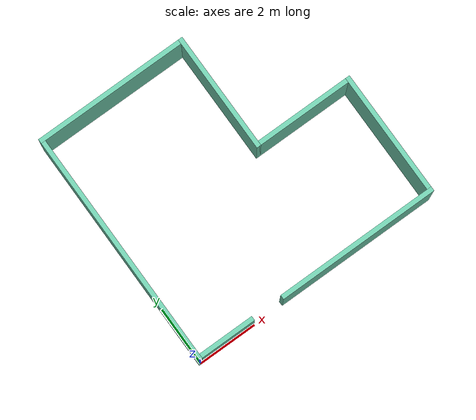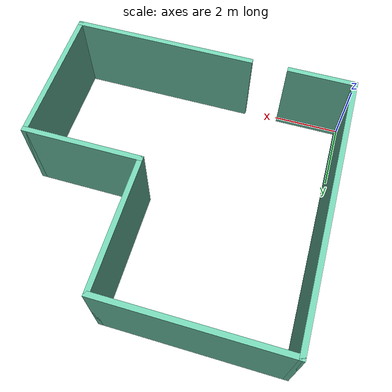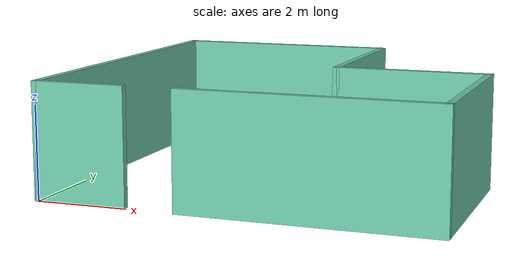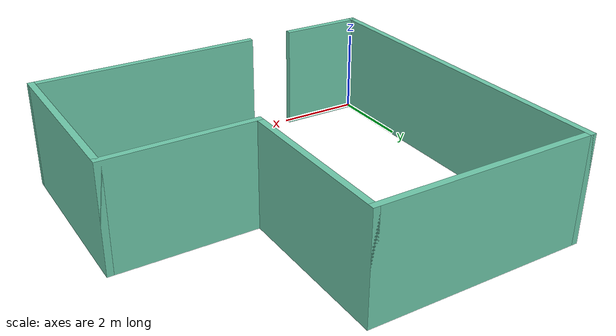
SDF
<?xml version='1.0'?>
<sdf version='1.7'>
  <model name='room'>
    <pose>4.225 4.025 0 0 -0 0</pose>
    <link name='Wall_0'>
      <collision name='Wall_0_Collision'>
        <geometry>
          <box>
            <size>8.1 0.15 2.5</size>
          </box>
        </geometry>
        <pose>0 0 1.25 0 -0 0</pose>
      </collision>
      <visual name='Wall_0_Visual'>
        <pose>0 0 1.25 0 -0 0</pose>
        <geometry>
          <box>
            <size>8.1 0.15 2.5</size>
          </box>
        </geometry>
        <material>
          <script>
            <uri>file://media/materials/scripts/gazebo.material</uri>
            <name>Gazebo/Grey</name>
          </script>
          <ambient>0.435294 0.796078 0.67451 1</ambient>
        </material>
        <meta>
          <layer>0</layer>
        </meta>
      </visual>
      <pose>-4.225 0 0 0 -0 1.5708</pose>
    </link>
    <link name='Wall_2'>
      <collision name='Wall_2_Collision'>
        <geometry>
          <box>
            <size>5.25 0.15 2.5</size>
          </box>
        </geometry>
        <pose>0 0 1.25 0 -0 0</pose>
      </collision>
      <visual name='Wall_2_Visual'>
        <pose>0 0 1.25 0 -0 0</pose>
        <geometry>
          <box>
            <size>5.25 0.15 2.5</size>
          </box>
        </geometry>
        <material>
          <script>
            <uri>file://media/materials/scripts/gazebo.material</uri>
            <name>Gazebo/Grey</name>
          </script>
          <ambient>0.435294 0.796078 0.67451 1</ambient>
        </material>
        <meta>
          <layer>0</layer>
        </meta>
      </visual>
      <pose>-1.675 3.975 0 0 -0 0</pose>
    </link>
    <link name='Wall_3'>
      <collision name='Wall_3_Collision'>
        <geometry>
          <box>
            <size>4 0.15 2.5</size>
          </box>
        </geometry>
        <pose>0 0 1.25 0 -0 0</pose>
      </collision>
      <visual name='Wall_3_Visual'>
        <pose>0 0 1.25 0 -0 0</pose>
        <geometry>
          <box>
            <size>4 0.15 2.5</size>
          </box>
        </geometry>
        <material>
          <script>
            <uri>file://media/materials/scripts/gazebo.material</uri>
            <name>Gazebo/Grey</name>
          </script>
          <ambient>0.435294 0.796078 0.67451 1</ambient>
        </material>
        <meta>
          <layer>0</layer>
        </meta>
      </visual>
      <pose>0.875 2.05 0 0 -0 -1.5708</pose>
    </link>
    <link name='Wall_4'>
      <collision name='Wall_4_Collision'>
        <geometry>
          <box>
            <size>3.5 0.15 2.5</size>
          </box>
        </geometry>
        <pose>0 0 1.25 0 -0 0</pose>
      </collision>
      <visual name='Wall_4_Visual'>
        <pose>0 0 1.25 0 -0 0</pose>
        <geometry>
          <box>
            <size>3.5 0.15 2.5</size>
          </box>
        </geometry>
        <material>
          <script>
            <uri>file://media/materials/scripts/gazebo.material</uri>
            <name>Gazebo/Grey</name>
          </script>
          <ambient>0.435294 0.796078 0.67451 1</ambient>
        </material>
        <meta>
          <layer>0</layer>
        </meta>
      </visual>
      <pose>2.55 0.125 0 0 -0 0</pose>
    </link>
    <link name='Wall_5'>
      <collision name='Wall_5_Collision'>
        <geometry>
          <box>
            <size>4.25 0.15 2.5</size>
          </box>
        </geometry>
        <pose>0 0 1.25 0 -0 0</pose>
      </collision>
      <visual name='Wall_5_Visual'>
        <pose>0 0 1.25 0 -0 0</pose>
        <geometry>
          <box>
            <size>4.25 0.15 2.5</size>
          </box>
        </geometry>
        <material>
          <script>
            <uri>file://media/materials/scripts/gazebo.material</uri>
            <name>Gazebo/Grey</name>
          </script>
          <ambient>0.435294 0.796078 0.67451 1</ambient>
        </material>
        <meta>
          <layer>0</layer>
        </meta>
      </visual>
      <pose>4.225 -1.925 0 0 -0 -1.5708</pose>
    </link>
    <link name='Wall_6'>
      <collision name='Wall_6_Collision'>
        <geometry>
          <box>
            <size>5.5 0.15 2.5</size>
          </box>
        </geometry>
        <pose>0 0 1.25 0 -0 0</pose>
      </collision>
      <visual name='Wall_6_Visual'>
        <pose>0 0 1.25 0 -0 0</pose>
        <geometry>
          <box>
            <size>5.5 0.15 2.5</size>
          </box>
        </geometry>
        <material>
          <script>
            <uri>file://media/materials/scripts/gazebo.material</uri>
            <name>Gazebo/Grey</name>
          </script>
          <ambient>0.435294 0.796078 0.67451 1</ambient>
        </material>
        <meta>
          <layer>0</layer>
        </meta>
      </visual>
      <pose>1.55 -3.975 0 0 -0 3.14159</pose>
    </link>
    <link name='Wall_8'>
      <collision name='Wall_8_Collision'>
        <geometry>
          <box>
            <size>2.05 0.15 2.5</size>
          </box>
        </geometry>
        <pose>0 0 1.25 0 -0 0</pose>
      </collision>
      <visual name='Wall_8_Visual'>
        <pose>0 0 1.25 0 -0 0</pose>
        <geometry>
          <box>
            <size>2.05 0.15 2.5</size>
          </box>
        </geometry>
        <material>
          <script>
            <uri>file://media/materials/scripts/gazebo.material</uri>
            <name>Gazebo/Grey</name>
          </script>
          <ambient>0.435294 0.796078 0.67451 1</ambient>
        </material>
        <meta>
          <layer>0</layer>
        </meta>
      </visual>
      <pose>-3.275 -3.975 0 0 -0 0</pose>
    </link>
    <static>1</static>
  </model>
</sdf>
